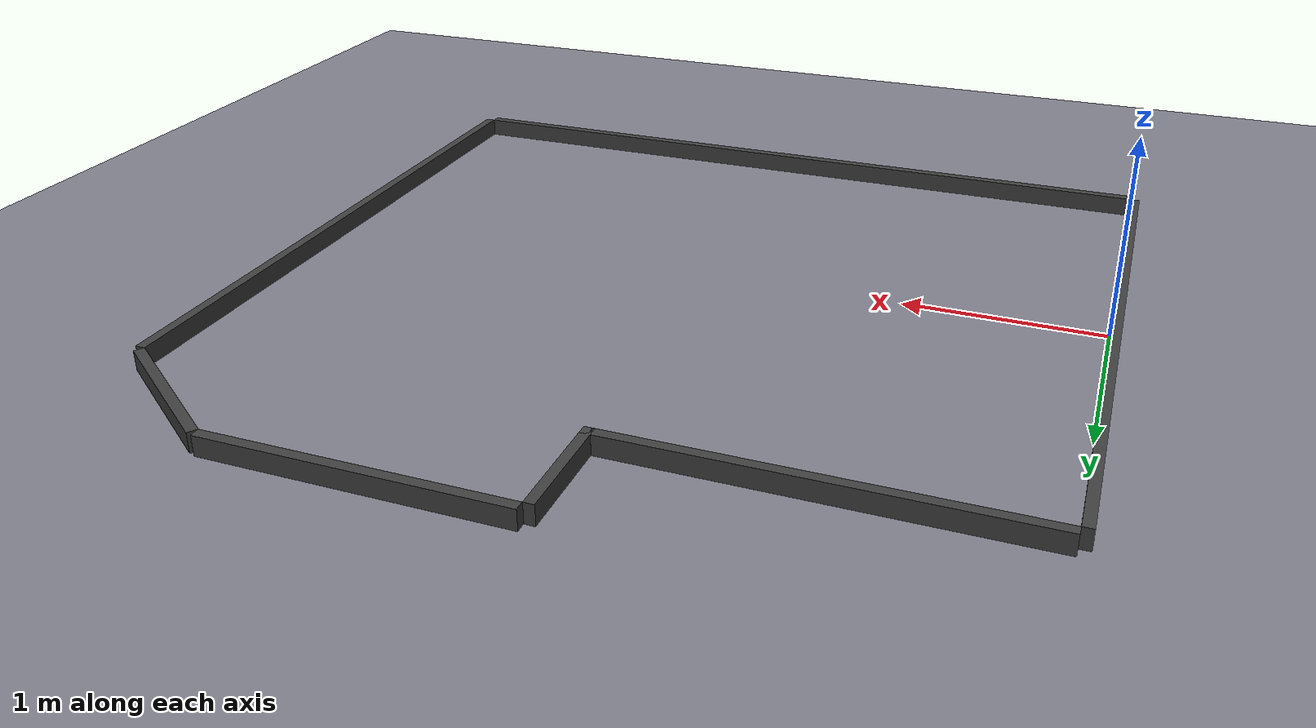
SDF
<?xml version="1.0" encoding="UTF-8"?>
<sdf version="1.9">
  <world name="kth_space_lab">
    <physics type="ode">
      <max_step_size>0.006</max_step_size>
      <real_time_factor>1.0</real_time_factor>
      <real_time_update_rate>200</real_time_update_rate>
    </physics>
    <plugin name="gz::sim::systems::Physics" filename="gz-sim-physics-system"/>
    <plugin name="gz::sim::systems::UserCommands" filename="gz-sim-user-commands-system"/>
    <plugin name="gz::sim::systems::SceneBroadcaster" filename="gz-sim-scene-broadcaster-system"/>
    <plugin name="gz::sim::systems::Contact" filename="gz-sim-contact-system"/>
    <plugin name="gz::sim::systems::Imu" filename="gz-sim-imu-system"/>
    <plugin name="gz::sim::systems::AirPressure" filename="gz-sim-air-pressure-system"/>
    <plugin name="gz::sim::systems::ApplyLinkWrench" filename="gz-sim-apply-link-wrench-system"/>
    <plugin name="gz::sim::systems::NavSat" filename="gz-sim-navsat-system"/>
    <plugin name="gz::sim::systems::Sensors" filename="gz-sim-sensors-system">
      <render_engine>ogre2</render_engine>
    </plugin>

    <gui fullscreen="false">
      <!-- 3D scene -->
      <plugin filename="MinimalScene" name="3D View">
        <gz-gui>
          <title>3D View</title>
          <property type="bool" key="showTitleBar">false</property>
          <property type="string" key="state">docked</property>
        </gz-gui>
        <engine>ogre2</engine>
        <scene>scene</scene>
        <ambient_light>0.4 0.4 0.4</ambient_light>
        <background_color>0.8 0.8 0.8</background_color>
        <camera_pose>2 -3.2 3 0 0.8 1.57</camera_pose>
        <camera_clip>
          <near>0.25</near>
          <far>25000</far>
        </camera_clip>
      </plugin>
      <!-- Plugins that add functionality to the scene -->
      <plugin filename="EntityContextMenuPlugin" name="Entity context menu">
        <gz-gui>
          <property key="state" type="string">floating</property>
          <property key="width" type="double">5</property>
          <property key="height" type="double">5</property>
          <property key="showTitleBar" type="bool">false</property>
        </gz-gui>
      </plugin>
      <plugin filename="GzSceneManager" name="Scene Manager">
        <gz-gui>
          <property key="resizable" type="bool">false</property>
          <property key="width" type="double">5</property>
          <property key="height" type="double">5</property>
          <property key="state" type="string">floating</property>
          <property key="showTitleBar" type="bool">false</property>
        </gz-gui>
      </plugin>
      <plugin filename="InteractiveViewControl" name="Interactive view control">
        <gz-gui>
          <property key="resizable" type="bool">false</property>
          <property key="width" type="double">5</property>
          <property key="height" type="double">5</property>
          <property key="state" type="string">floating</property>
          <property key="showTitleBar" type="bool">false</property>
        </gz-gui>
      </plugin>
      <plugin filename="CameraTracking" name="Camera Tracking">
        <gz-gui>
          <property key="resizable" type="bool">false</property>
          <property key="width" type="double">5</property>
          <property key="height" type="double">5</property>
          <property key="state" type="string">floating</property>
          <property key="showTitleBar" type="bool">false</property>
        </gz-gui>
      </plugin>
      <plugin filename="MarkerManager" name="Marker manager">
        <gz-gui>
          <property key="resizable" type="bool">false</property>
          <property key="width" type="double">5</property>
          <property key="height" type="double">5</property>
          <property key="state" type="string">floating</property>
          <property key="showTitleBar" type="bool">false</property>
        </gz-gui>
      </plugin>
      <plugin filename="SelectEntities" name="Select Entities">
        <gz-gui>
          <anchors target="Select entities">
            <line own="right" target="right"/>
            <line own="top" target="top"/>
          </anchors>
          <property key="resizable" type="bool">false</property>
          <property key="width" type="double">5</property>
          <property key="height" type="double">5</property>
          <property key="state" type="string">floating</property>
          <property key="showTitleBar" type="bool">false</property>
        </gz-gui>
      </plugin>
      <plugin filename="VisualizationCapabilities" name="Visualization Capabilities">
        <gz-gui>
          <property key="resizable" type="bool">false</property>
          <property key="width" type="double">5</property>
          <property key="height" type="double">5</property>
          <property key="state" type="string">floating</property>
          <property key="showTitleBar" type="bool">false</property>
        </gz-gui>
      </plugin>
      <plugin filename="Spawn" name="Spawn Entities">
        <gz-gui>
          <anchors target="Select entities">
            <line own="right" target="right"/>
            <line own="top" target="top"/>
          </anchors>
          <property key="resizable" type="bool">false</property>
          <property key="width" type="double">5</property>
          <property key="height" type="double">5</property>
          <property key="state" type="string">floating</property>
          <property key="showTitleBar" type="bool">false</property>
        </gz-gui>
      </plugin>
      <plugin name="World control" filename="WorldControl">
        <gz-gui>
          <title>World control</title>
          <property type="bool" key="showTitleBar">0</property>
          <property type="bool" key="resizable">0</property>
          <property type="double" key="height">72</property>
          <property type="double" key="width">121</property>
          <property type="double" key="z">1</property>
          <property type="string" key="state">floating</property>
          <anchors target="3D View">
            <line own="left" target="left"/>
            <line own="bottom" target="bottom"/>
          </anchors>
        </gz-gui>
        <play_pause>1</play_pause>
        <step>1</step>
        <start_paused>1</start_paused>
      </plugin>
      <plugin name="World stats" filename="WorldStats">
        <gz-gui>
          <title>World stats</title>
          <property type="bool" key="showTitleBar">0</property>
          <property type="bool" key="resizable">0</property>
          <property type="double" key="height">110</property>
          <property type="double" key="width">290</property>
          <property type="double" key="z">1</property>
          <property type="string" key="state">floating</property>
          <anchors target="3D View">
            <line own="right" target="right"/>
            <line own="bottom" target="bottom"/>
          </anchors>
        </gz-gui>
        <sim_time>1</sim_time>
        <real_time>1</real_time>
        <real_time_factor>1</real_time_factor>
        <iterations>1</iterations>
      </plugin>
      <plugin name="Entity tree" filename="EntityTree"/>
    </gui>
    <gravity>0 0 -9.8</gravity>
    <magnetic_field>6e-06 2.3e-05 -4.2e-05</magnetic_field>
    <atmosphere type="adiabatic"/>
    <scene>
      <grid>false</grid>
      <ambient>0.8 0.8 0.8 1</ambient>
      <background>0.05 0.05 0.07 1</background>
      <shadows>true</shadows>
    </scene>
    <model name="ground_plane">
      <static>true</static>
      <link name="link">
        <collision name="collision">
          <geometry>
            <plane>
              <normal>0 0 1</normal>
              <size>6 6</size>
            </plane>
          </geometry>
        </collision>
        <visual name="visual">
          <geometry>
            <plane>
              <normal>0 0 1</normal>
              <size>6 6</size>
            </plane>
          </geometry>
          <material>
            <ambient>0.95 0.95 0.95 1</ambient>
            <diffuse>0.5 0.5 0.55 1</diffuse>
            <specular>0.2 0.2 0.2 1</specular>
            <emissive>0 0 0 1</emissive>
          </material>
        </visual>
        <pose>2.0 0.5 0 0 0 0</pose>
        <enable_wind>false</enable_wind>
      </link>
      <pose>0 0 0 0 -0 0</pose>
      <self_collide>false</self_collide>
    </model>
    <light name="sunUTC" type="directional">
      <pose>0 0 500 0 -0 0</pose>
      <cast_shadows>true</cast_shadows>
      <intensity>1.5</intensity>
      <direction>0.2 0.6 -0.8</direction>
      <diffuse>1 1 0.98 1</diffuse>
      <specular>0.3 0.3 0.3 1</specular>
      <attenuation>
        <range>2000</range>
        <linear>0</linear>
        <constant>1</constant>
        <quadratic>0</quadratic>
      </attenuation>
    </light>
    <spherical_coordinates>
      <surface_model>EARTH_WGS84</surface_model>
      <world_frame_orientation>ENU</world_frame_orientation>
      <latitude_deg>47.397971057728974</latitude_deg>
      <longitude_deg> 8.546163739800146</longitude_deg>
      <elevation>0</elevation>
    </spherical_coordinates>

    <!-- KTH Space Robotics Lab Floor Area -->
    <model name="wall_perimeter">
      <static>true</static>
      <link name="segment_0">
        <pose>2.05000 -1.60500 0.050 0 0 0.00000</pose>
        <collision name="collision">
          <geometry>
            <box><size>4.10000 0.05 0.1</size></box>
          </geometry>
          <surface>
            <bounce>
              <restitution_coefficient>1.0</restitution_coefficient>
              <threshold>0.0</threshold>
            </bounce>
            <friction>
              <ode>
                <mu>0.0</mu>
                <mu2>0.0</mu2>
              </ode>
            </friction>
            <contact>
              <ode>
                <kp>10000</kp>
                <kd>500</kd>
              </ode>
            </contact>
          </surface>
        </collision>
        <visual name="visual">
          <geometry>
            <box><size>4.10000 0.05 0.1</size></box>
          </geometry>
          <material>
            <ambient>0.2 0.2 0.2 1</ambient>
            <diffuse>0.25 0.25 0.25 1</diffuse>
            <specular>0.05 0.05 0.05 1</specular>
            <emissive>0 0 0 1</emissive>
          </material>
        </visual>
      </link>
      <link name="segment_1">
        <pose>4.12500 0.12000 0.050 0 0 1.57080</pose>
        <collision name="collision">
          <geometry>
            <box><size>3.40000 0.05 0.1</size></box>
          </geometry>
          <surface>
            <bounce>
              <restitution_coefficient>1.0</restitution_coefficient>
              <threshold>0.0</threshold>
            </bounce>
            <friction>
              <ode>
                <mu>0.0</mu>
                <mu2>0.0</mu2>
              </ode>
            </friction>
            <contact>
              <ode>
                <kp>10000</kp>
                <kd>500</kd>
              </ode>
            </contact>
          </surface>
        </collision>
        <visual name="visual">
          <geometry>
            <box><size>3.40000 0.05 0.1</size></box>
          </geometry>
          <material>
            <ambient>0.2 0.2 0.2 1</ambient>
            <diffuse>0.25 0.25 0.25 1</diffuse>
            <specular>0.05 0.05 0.05 1</specular>
            <emissive>0 0 0 1</emissive>
          </material>
        </visual>
      </link>
      <link name="segment_2">
        <pose>3.77442 2.08042 0.050 0 0 2.52693</pose>
        <collision name="collision">
          <geometry>
            <box><size>0.83235 0.05 0.1</size></box>
          </geometry>
          <surface>
            <bounce>
              <restitution_coefficient>1.0</restitution_coefficient>
              <threshold>0.0</threshold>
            </bounce>
            <friction>
              <ode>
                <mu>0.0</mu>
                <mu2>0.0</mu2>
              </ode>
            </friction>
            <contact>
              <ode>
                <kp>10000</kp>
                <kd>500</kd>
              </ode>
            </contact>
          </surface>
        </collision>
        <visual name="visual">
          <geometry>
            <box><size>0.83235 0.05 0.1</size></box>
          </geometry>
          <material>
            <ambient>0.2 0.2 0.2 1</ambient>
            <diffuse>0.25 0.25 0.25 1</diffuse>
            <specular>0.05 0.05 0.05 1</specular>
            <emissive>0 0 0 1</emissive>
          </material>
        </visual>
      </link>
      <link name="segment_3">
        <pose>2.69000 2.32500 0.050 0 0 3.14159</pose>
        <collision name="collision">
          <geometry>
            <box><size>1.46000 0.05 0.1</size></box>
          </geometry>
          <surface>
            <bounce>
              <restitution_coefficient>1.0</restitution_coefficient>
              <threshold>0.0</threshold>
            </bounce>
            <friction>
              <ode>
                <mu>0.0</mu>
                <mu2>0.0</mu2>
              </ode>
            </friction>
            <contact>
              <ode>
                <kp>10000</kp>
                <kd>500</kd>
              </ode>
            </contact>
          </surface>
        </collision>
        <visual name="visual">
          <geometry>
            <box><size>1.46000 0.05 0.1</size></box>
          </geometry>
          <material>
            <ambient>0.2 0.2 0.2 1</ambient>
            <diffuse>0.25 0.25 0.25 1</diffuse>
            <specular>0.05 0.05 0.05 1</specular>
            <emissive>0 0 0 1</emissive>
          </material>
        </visual>
      </link>
      <link name="segment_4">
        <pose>1.93500 2.02000 0.050 0 0 -1.57080</pose>
        <collision name="collision">
          <geometry>
            <box><size>0.56000 0.05 0.1</size></box>
          </geometry>
          <surface>
            <bounce>
              <restitution_coefficient>1.0</restitution_coefficient>
              <threshold>0.0</threshold>
            </bounce>
            <friction>
              <ode>
                <mu>0.0</mu>
                <mu2>0.0</mu2>
              </ode>
            </friction>
            <contact>
              <ode>
                <kp>10000</kp>
                <kd>500</kd>
              </ode>
            </contact>
          </surface>
        </collision>
        <visual name="visual">
          <geometry>
            <box><size>0.56000 0.05 0.1</size></box>
          </geometry>
          <material>
            <ambient>0.2 0.2 0.2 1</ambient>
            <diffuse>0.25 0.25 0.25 1</diffuse>
            <specular>0.05 0.05 0.05 1</specular>
            <emissive>0 0 0 1</emissive>
          </material>
        </visual>
      </link>
      <link name="segment_5">
        <pose>0.98000 1.76500 0.050 0 0 3.14159</pose>
        <collision name="collision">
          <geometry>
            <box><size>1.96000 0.05 0.1</size></box>
          </geometry>
          <surface>
            <bounce>
              <restitution_coefficient>1.0</restitution_coefficient>
              <threshold>0.0</threshold>
            </bounce>
            <friction>
              <ode>
                <mu>0.0</mu>
                <mu2>0.0</mu2>
              </ode>
            </friction>
            <contact>
              <ode>
                <kp>10000</kp>
                <kd>500</kd>
              </ode>
            </contact>
          </surface>
        </collision>
        <visual name="visual">
          <geometry>
            <box><size>1.96000 0.05 0.1</size></box>
          </geometry>
          <material>
            <ambient>0.2 0.2 0.2 1</ambient>
            <diffuse>0.25 0.25 0.25 1</diffuse>
            <specular>0.05 0.05 0.05 1</specular>
            <emissive>0 0 0 1</emissive>
          </material>
        </visual>
      </link>
      <link name="segment_6">
        <pose>-0.02500 0.08000 0.050 0 0 -1.57080</pose>
        <collision name="collision">
          <geometry>
            <box><size>3.32000 0.05 0.1</size></box>
          </geometry>
          <surface>
            <bounce>
              <restitution_coefficient>1.0</restitution_coefficient>
              <threshold>0.0</threshold>
            </bounce>
            <friction>
              <ode>
                <mu>0.0</mu>
                <mu2>0.0</mu2>
              </ode>
            </friction>
            <contact>
              <ode>
                <kp>10000</kp>
                <kd>500</kd>
              </ode>
            </contact>
          </surface>
        </collision>
        <visual name="visual">
          <geometry>
            <box><size>3.32000 0.05 0.1</size></box>
          </geometry>
          <material>
            <ambient>0.2 0.2 0.2 1</ambient>
            <diffuse>0.25 0.25 0.25 1</diffuse>
            <specular>0.05 0.05 0.05 1</specular>
            <emissive>0 0 0 1</emissive>
          </material>
        </visual>
      </link>
    </model>
  </world>
</sdf>
